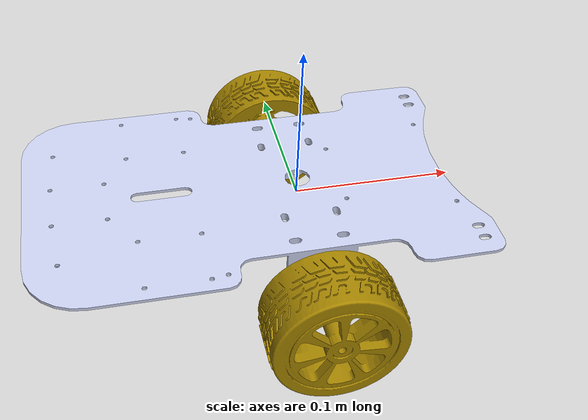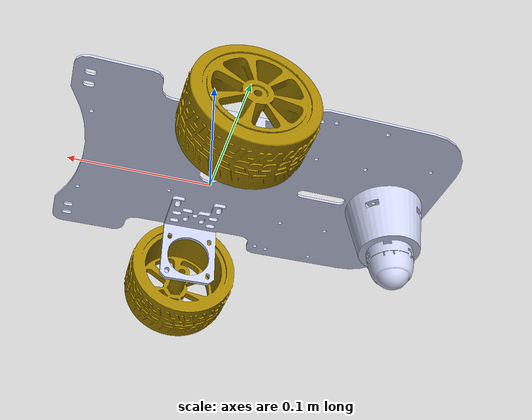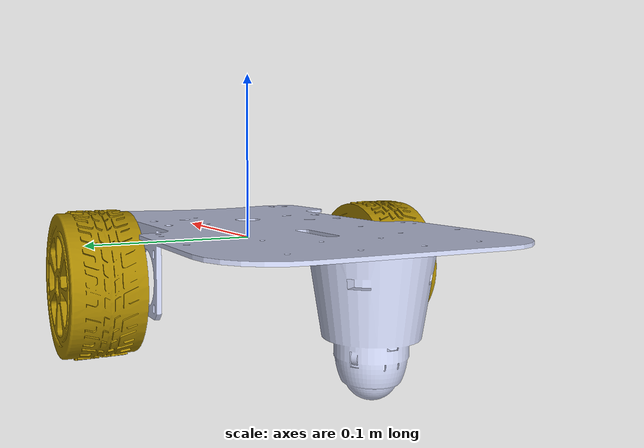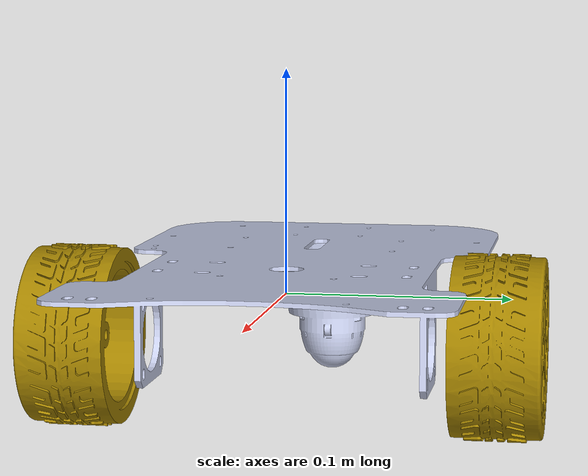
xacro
<?xml version="1.0"?>
<robot xmlns:xacro="http://www.ros.org/wiki/xacro" name="bot">

    <xacro:include filename="$(find bot_description)/urdf/bot_properties.xacro"/>
    <xacro:include filename="$(find bot_description)/urdf/macros.xacro"/>
    <xacro:include filename="$(find bot_description)/urdf/materials.xacro"/>
    <xacro:include filename="$(find bot_description)/urdf/gazebo_plugins.xacro"/>
    <xacro:include filename="$(find bot_description)/urdf/gazebo_properties.xacro"/>
    <xacro:include filename="$(find bot_description)/urdf/gazebo_plugins.xacro"/>

  <link name="base_footprint"/>

  <joint name="base_joint" type="fixed">
    <parent link="base_footprint"/>
    <child link="base_link"/>
    <origin xyz="0.0 0.0 0.010" rpy="0 0 0"/>
  </joint>

  <link name="base_link">
    <inertial>
      <origin
        xyz="-0.027396 1.3878E-17 -0.0041809"
        rpy="0 0 0" />
      <mass
        value="0.11165" />
      <inertia
        ixx="0.00017984"
        ixy="-9.8938E-20"
        ixz="-5.4132E-21"
        iyy="0.00051834"
        iyz="4.6587E-21"
        izz="0.00068061" />
    </inertial>
    <visual>
      <origin
        xyz="0 0 0"
        rpy="0 0 0" />
      <geometry>
        <mesh
          filename="package://bot_description/meshes/base_link.STL" />
      </geometry>
      <material
        name="">
        <color
          rgba="0.79216 0.81961 0.93333 1" />
      </material>
    </visual>
    <collision>
      <origin
        xyz="0 0 0"
        rpy="0 0 0" />
      <geometry>
        <mesh
          filename="package://bot_description/meshes/base_link.STL" />
      </geometry>
    </collision>
  </link>

  <link
    name="caster">
    <inertial>
      <origin
        xyz="2.398E-09 -5.9697E-09 -0.02447"
        rpy="0 0 0" />
      <mass
        value="0.074554" />
      <inertia
        ixx="2.263E-05"
        ixy="-5.1952E-13"
        ixz="2.1696E-13"
        iyy="2.263E-05"
        iyz="-8.3514E-13"
        izz="2.7097E-05" />
    </inertial>
    <visual>
      <origin
        xyz="0 0 0"
        rpy="0 0 0" />
      <geometry>
        <mesh
          filename="package://bot_description/meshes/caster.STL" />
      </geometry>
      <material
        name="">
        <color
          rgba="0.79216 0.81961 0.93333 1" />
      </material>
    </visual>
    <collision>
      <origin
        xyz="0 0 0"
        rpy="0 0 0" />
      <geometry>
        <mesh
          filename="package://bot_description/meshes/caster.STL" />
      </geometry>
    </collision>
  </link>
  <joint
    name="caster_joint"
    type="fixed">
    <origin
      xyz="-0.136 0 -0.001"
      rpy="0 0 -1.5708" />
    <parent
      link="base_link" />
    <child
      link="caster" />
    <axis
      xyz="0 0 0" />
  </joint>
  <link
    name="right_wheel">
    <inertial>
      <origin
        xyz="-1.6379E-06 0.0058044 2.8375E-06"
        rpy="0 0 0" />
      <mass
        value="0.12122" />
      <inertia
        ixx="7.3992E-05"
        ixy="2.5516E-09"
        ixz="-7.5984E-10"
        iyy="0.00011879"
        iyz="-4.4202E-09"
        izz="7.3993E-05" />
    </inertial>
    <visual>
      <origin
        xyz="0 0 0"
        rpy="0 0 0" />
      <geometry>
        <mesh
          filename="package://bot_description/meshes/right_wheel.STL" />
      </geometry>
      <material
        name="">
        <color
          rgba="0.64706 0.51765 0 1" />
      </material>
    </visual>
    <collision>
      <origin
        xyz="0 0 0"
        rpy="0 0 0" />
      <geometry>
        <mesh
          filename="package://bot_description/meshes/right_wheel.STL" />
      </geometry>
    </collision>
  </link>
  <joint
    name="right_joint"
    type="continuous">
    <origin
      xyz="0 -0.10259 -0.0314"
      rpy="0 0.59971 0" />
    <parent
      link="base_link" />
    <child
      link="right_wheel" />
    <axis
      xyz="0 1 0" />
  </joint>
  <link
    name="left_wheel">
    <inertial>
      <origin
        xyz="-1.5889E-06 -0.021781 2.8658E-06"
        rpy="0 0 0" />
      <mass
        value="0.12122" />
      <inertia
        ixx="7.3992E-05"
        ixy="2.5516E-09"
        ixz="-7.5984E-10"
        iyy="0.00011879"
        iyz="-4.4202E-09"
        izz="7.3993E-05" />
    </inertial>
    <visual>
      <origin
        xyz="0 0 0"
        rpy="0 0 0" />
      <geometry>
        <mesh
          filename="package://bot_description/meshes/left_wheel.STL" />
      </geometry>
      <material
        name="">
        <color
          rgba="0.64706 0.51765 0 1" />
      </material>
    </visual>
    <collision>
      <origin
        xyz="0 0 0"
        rpy="0 0 0" />
      <geometry>
        <mesh
          filename="package://bot_description/meshes/left_wheel.STL" />
      </geometry>
    </collision>
  </link>
  <joint
    name="left_joint"
    type="continuous">
    <origin
      xyz="0 0.075 -0.0314"
      rpy="0 0.44749 3.1416" />
    <parent
      link="base_link" />
    <child
      link="left_wheel" />
    <axis
      xyz="0 1 0" />
  </joint>

</robot>

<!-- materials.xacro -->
<robot xmlns:xacro="http://www.ros.org/wiki/xacro" name="bot">

   <!-- Init colour -->
  <material name="black">
      <color rgba="0.0 0.0 0.0 1.0"/>
  </material>

  <material name="dark">
    <color rgba="0.3 0.3 0.3 1.0"/>
  </material>
  <material name="light_black">
    <color rgba="0.4 0.4 0.4 1.0"/>
  </material>

  <material name="blue">
    <color rgba="0.0 0.0 0.8 1.0"/>
  </material>

  <material name="green">
    <color rgba="0.0 0.8 0.0 1.0"/>
  </material>

  <material name="grey">
    <color rgba="0.5 0.5 0.5 1.0"/>
  </material>

  <material name="orange">
    <color rgba="${255/255} ${108/255} ${10/255} 1.0"/>
  </material>

  <material name="brown">
    <color rgba="${222/255} ${207/255} ${195/255} 1.0"/>
  </material>

  <material name="red">
    <color rgba="0.8 0.0 0.0 1.0"/>
  </material>

  <material name="white">
    <color rgba="1.0 1.0 1.0 1.0"/>
  </material>

</robot>
